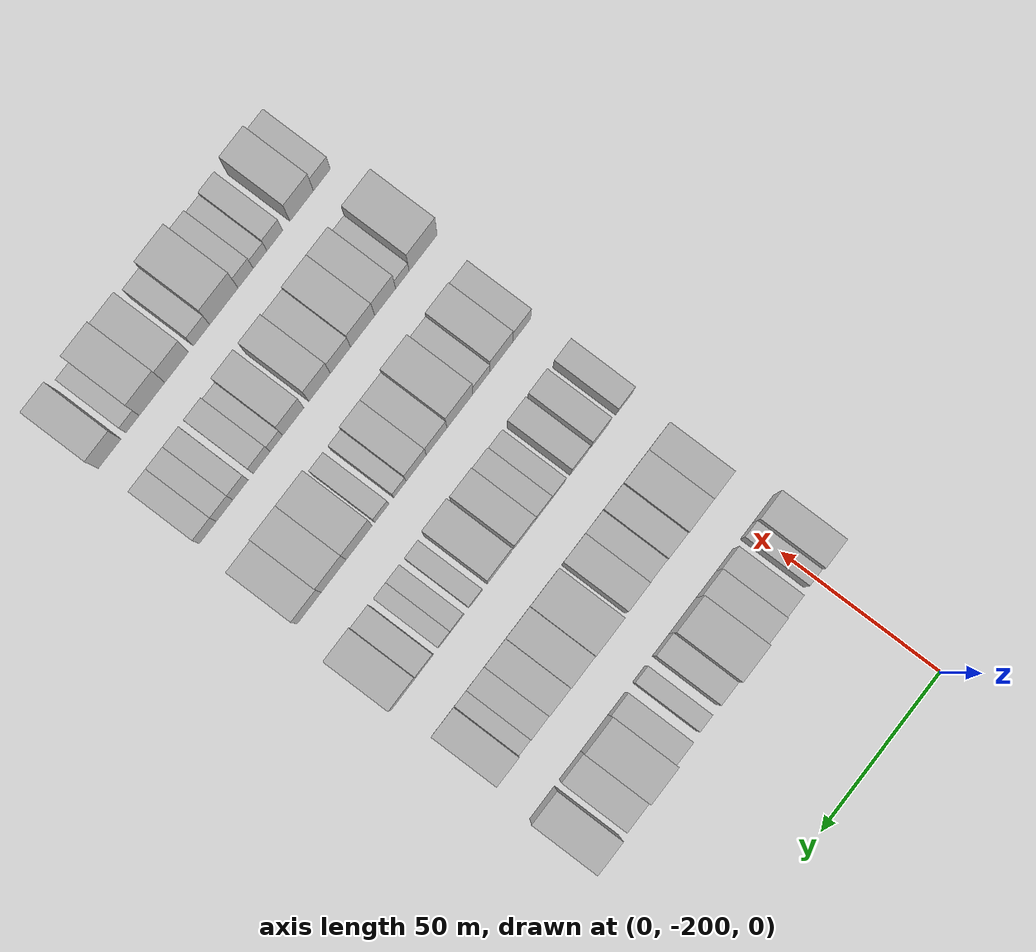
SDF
<sdf version="1.6">
 <world name="default">
  <model name="building_38">
   <static>1</static>
   <pose>50.0000 -205.9737 0 0.000000 0.000000 0.000000</pose>
   <link name="link">
    <pose>0 0 9.00 0 0 0</pose>
    <collision name="collision"><geometry><box><size>20.0000 8.9506 18.0000</size></box></geometry></collision>
    <visual name="visual">
     <cast_shadows>0</cast_shadows>
     <geometry><box><size>20.0000 8.9506 18.0000</size></box></geometry>
     <material>
      <script>
       <uri>model://HANNAS_wall/materials/scripts</uri>
       <uri>model://HANNAS_wall/materials/textures</uri>
       <name>vrc/HANNAS_wall</name>
      </script>
     </material>
    </visual>
   </link>
  </model>
  <model name="building_39">
   <static>1</static>
   <pose>50.0000 -198.9181 0 0.000000 0.000000 0.000000</pose>
   <link name="link">
    <pose>0 0 6.00 0 0 0</pose>
    <collision name="collision"><geometry><box><size>20.0000 5.1606 12.0000</size></box></geometry></collision>
    <visual name="visual">
     <cast_shadows>0</cast_shadows>
     <geometry><box><size>20.0000 5.1606 12.0000</size></box></geometry>
     <material>
      <script>
       <uri>model://HANNAS_wall/materials/scripts</uri>
       <uri>model://HANNAS_wall/materials/textures</uri>
       <name>vrc/HANNAS_wall</name>
      </script>
     </material>
    </visual>
   </link>
  </model>
  <model name="building_40">
   <static>1</static>
   <pose>50.0000 -189.7828 0 0.000000 0.000000 0.000000</pose>
   <link name="link">
    <pose>0 0 7.50 0 0 0</pose>
    <collision name="collision"><geometry><box><size>20.0000 7.1099 15.0000</size></box></geometry></collision>
    <visual name="visual">
     <cast_shadows>0</cast_shadows>
     <geometry><box><size>20.0000 7.1099 15.0000</size></box></geometry>
     <material>
      <script>
       <uri>model://HANNAS_wall/materials/scripts</uri>
       <uri>model://HANNAS_wall/materials/textures</uri>
       <name>vrc/HANNAS_wall</name>
      </script>
     </material>
    </visual>
   </link>
  </model>
  <model name="building_41">
   <static>1</static>
   <pose>50.0000 -182.0409 0 0.000000 0.000000 0.000000</pose>
   <link name="link">
    <pose>0 0 9.00 0 0 0</pose>
    <collision name="collision"><geometry><box><size>20.0000 8.3740 18.0000</size></box></geometry></collision>
    <visual name="visual">
     <cast_shadows>0</cast_shadows>
     <geometry><box><size>20.0000 8.3740 18.0000</size></box></geometry>
     <material>
      <script>
       <uri>model://HANNAS_wall/materials/scripts</uri>
       <uri>model://HANNAS_wall/materials/textures</uri>
       <name>vrc/HANNAS_wall</name>
      </script>
     </material>
    </visual>
   </link>
  </model>
  <model name="building_42">
   <static>1</static>
   <pose>50.0000 -172.1996 0 0.000000 0.000000 0.000000</pose>
   <link name="link">
    <pose>0 0 12.00 0 0 0</pose>
    <collision name="collision"><geometry><box><size>20.0000 11.3087 24.0000</size></box></geometry></collision>
    <visual name="visual">
     <cast_shadows>0</cast_shadows>
     <geometry><box><size>20.0000 11.3087 24.0000</size></box></geometry>
     <material>
      <script>
       <uri>model://HANNAS_wall/materials/scripts</uri>
       <uri>model://HANNAS_wall/materials/textures</uri>
       <name>vrc/HANNAS_wall</name>
      </script>
     </material>
    </visual>
   </link>
  </model>
  <model name="building_43">
   <static>1</static>
   <pose>50.0000 -162.9634 0 0.000000 0.000000 0.000000</pose>
   <link name="link">
    <pose>0 0 7.50 0 0 0</pose>
    <collision name="collision"><geometry><box><size>20.0000 7.1636 15.0000</size></box></geometry></collision>
    <visual name="visual">
     <cast_shadows>0</cast_shadows>
     <geometry><box><size>20.0000 7.1636 15.0000</size></box></geometry>
     <material>
      <script>
       <uri>model://HANNAS_wall/materials/scripts</uri>
       <uri>model://HANNAS_wall/materials/textures</uri>
       <name>vrc/HANNAS_wall</name>
      </script>
     </material>
    </visual>
   </link>
  </model>
  <model name="building_44">
   <static>1</static>
   <pose>50.0000 -153.7354 0 0.000000 0.000000 0.000000</pose>
   <link name="link">
    <pose>0 0 6.00 0 0 0</pose>
    <collision name="collision"><geometry><box><size>20.0000 5.2925 12.0000</size></box></geometry></collision>
    <visual name="visual">
     <cast_shadows>0</cast_shadows>
     <geometry><box><size>20.0000 5.2925 12.0000</size></box></geometry>
     <material>
      <script>
       <uri>model://HANNAS_wall/materials/scripts</uri>
       <uri>model://HANNAS_wall/materials/textures</uri>
       <name>vrc/HANNAS_wall</name>
      </script>
     </material>
    </visual>
   </link>
  </model>
  <model name="building_45">
   <static>1</static>
   <pose>50.0000 -144.5357 0 0.000000 0.000000 0.000000</pose>
   <link name="link">
    <pose>0 0 7.50 0 0 0</pose>
    <collision name="collision"><geometry><box><size>20.0000 7.1068 15.0000</size></box></geometry></collision>
    <visual name="visual">
     <cast_shadows>0</cast_shadows>
     <geometry><box><size>20.0000 7.1068 15.0000</size></box></geometry>
     <material>
      <script>
       <uri>model://HANNAS_wall/materials/scripts</uri>
       <uri>model://HANNAS_wall/materials/textures</uri>
       <name>vrc/HANNAS_wall</name>
      </script>
     </material>
    </visual>
   </link>
  </model>
  <model name="building_46">
   <static>1</static>
   <pose>50.0000 -135.3073 0 0.000000 0.000000 0.000000</pose>
   <link name="link">
    <pose>0 0 12.00 0 0 0</pose>
    <collision name="collision"><geometry><box><size>20.0000 11.3501 24.0000</size></box></geometry></collision>
    <visual name="visual">
     <cast_shadows>0</cast_shadows>
     <geometry><box><size>20.0000 11.3501 24.0000</size></box></geometry>
     <material>
      <script>
       <uri>model://HANNAS_wall/materials/scripts</uri>
       <uri>model://HANNAS_wall/materials/textures</uri>
       <name>vrc/HANNAS_wall</name>
      </script>
     </material>
    </visual>
   </link>
  </model>
  <model name="building_47">
   <static>1</static>
   <pose>50.0000 -125.1540 0 0.000000 0.000000 0.000000</pose>
   <link name="link">
    <pose>0 0 9.00 0 0 0</pose>
    <collision name="collision"><geometry><box><size>20.0000 8.9565 18.0000</size></box></geometry></collision>
    <visual name="visual">
     <cast_shadows>0</cast_shadows>
     <geometry><box><size>20.0000 8.9565 18.0000</size></box></geometry>
     <material>
      <script>
       <uri>model://HANNAS_wall/materials/scripts</uri>
       <uri>model://HANNAS_wall/materials/textures</uri>
       <name>vrc/HANNAS_wall</name>
      </script>
     </material>
    </visual>
   </link>
  </model>
  <model name="building_48">
   <static>1</static>
   <pose>50.0000 -113.5470 0 0.000000 0.000000 0.000000</pose>
   <link name="link">
    <pose>0 0 12.00 0 0 0</pose>
    <collision name="collision"><geometry><box><size>20.0000 10.2575 24.0000</size></box></geometry></collision>
    <visual name="visual">
     <cast_shadows>0</cast_shadows>
     <geometry><box><size>20.0000 10.2575 24.0000</size></box></geometry>
     <material>
      <script>
       <uri>model://HANNAS_wall/materials/scripts</uri>
       <uri>model://HANNAS_wall/materials/textures</uri>
       <name>vrc/HANNAS_wall</name>
      </script>
     </material>
    </visual>
   </link>
  </model>
  <model name="building_157">
   <static>1</static>
   <pose>82.0000 -202.5680 0 0.000000 0.000000 0.000000</pose>
   <link name="link">
    <pose>0 0 10.50 0 0 0</pose>
    <collision name="collision"><geometry><box><size>20.0000 8.5400 21.0000</size></box></geometry></collision>
    <visual name="visual">
     <cast_shadows>0</cast_shadows>
     <geometry><box><size>20.0000 8.5400 21.0000</size></box></geometry>
     <material>
      <script>
       <uri>model://HANNAS_wall/materials/scripts</uri>
       <uri>model://HANNAS_wall/materials/textures</uri>
       <name>vrc/HANNAS_wall</name>
      </script>
     </material>
    </visual>
   </link>
  </model>
  <model name="building_158">
   <static>1</static>
   <pose>82.0000 -193.2021 0 0.000000 0.000000 0.000000</pose>
   <link name="link">
    <pose>0 0 10.50 0 0 0</pose>
    <collision name="collision"><geometry><box><size>20.0000 10.1916 21.0000</size></box></geometry></collision>
    <visual name="visual">
     <cast_shadows>0</cast_shadows>
     <geometry><box><size>20.0000 10.1916 21.0000</size></box></geometry>
     <material>
      <script>
       <uri>model://HANNAS_wall/materials/scripts</uri>
       <uri>model://HANNAS_wall/materials/textures</uri>
       <name>vrc/HANNAS_wall</name>
      </script>
     </material>
    </visual>
   </link>
  </model>
  <model name="building_159">
   <static>1</static>
   <pose>82.0000 -184.1358 0 0.000000 0.000000 0.000000</pose>
   <link name="link">
    <pose>0 0 9.00 0 0 0</pose>
    <collision name="collision"><geometry><box><size>20.0000 7.9411 18.0000</size></box></geometry></collision>
    <visual name="visual">
     <cast_shadows>0</cast_shadows>
     <geometry><box><size>20.0000 7.9411 18.0000</size></box></geometry>
     <material>
      <script>
       <uri>model://HANNAS_wall/materials/scripts</uri>
       <uri>model://HANNAS_wall/materials/textures</uri>
       <name>vrc/HANNAS_wall</name>
      </script>
     </material>
    </visual>
   </link>
  </model>
  <model name="building_160">
   <static>1</static>
   <pose>82.0000 -176.4742 0 0.000000 0.000000 0.000000</pose>
   <link name="link">
    <pose>0 0 7.50 0 0 0</pose>
    <collision name="collision"><geometry><box><size>20.0000 7.3819 15.0000</size></box></geometry></collision>
    <visual name="visual">
     <cast_shadows>0</cast_shadows>
     <geometry><box><size>20.0000 7.3819 15.0000</size></box></geometry>
     <material>
      <script>
       <uri>model://HANNAS_wall/materials/scripts</uri>
       <uri>model://HANNAS_wall/materials/textures</uri>
       <name>vrc/HANNAS_wall</name>
      </script>
     </material>
    </visual>
   </link>
  </model>
  <model name="building_161">
   <static>1</static>
   <pose>82.0000 -168.3048 0 0.000000 0.000000 0.000000</pose>
   <link name="link">
    <pose>0 0 9.00 0 0 0</pose>
    <collision name="collision"><geometry><box><size>20.0000 8.9570 18.0000</size></box></geometry></collision>
    <visual name="visual">
     <cast_shadows>0</cast_shadows>
     <geometry><box><size>20.0000 8.9570 18.0000</size></box></geometry>
     <material>
      <script>
       <uri>model://HANNAS_wall/materials/scripts</uri>
       <uri>model://HANNAS_wall/materials/textures</uri>
       <name>vrc/HANNAS_wall</name>
      </script>
     </material>
    </visual>
   </link>
  </model>
  <model name="building_162">
   <static>1</static>
   <pose>82.0000 -155.9748 0 0.000000 0.000000 0.000000</pose>
   <link name="link">
    <pose>0 0 12.00 0 0 0</pose>
    <collision name="collision"><geometry><box><size>20.0000 11.7029 24.0000</size></box></geometry></collision>
    <visual name="visual">
     <cast_shadows>0</cast_shadows>
     <geometry><box><size>20.0000 11.7029 24.0000</size></box></geometry>
     <material>
      <script>
       <uri>model://HANNAS_wall/materials/scripts</uri>
       <uri>model://HANNAS_wall/materials/textures</uri>
       <name>vrc/HANNAS_wall</name>
      </script>
     </material>
    </visual>
   </link>
  </model>
  <model name="building_163">
   <static>1</static>
   <pose>82.0000 -145.2569 0 0.000000 0.000000 0.000000</pose>
   <link name="link">
    <pose>0 0 10.50 0 0 0</pose>
    <collision name="collision"><geometry><box><size>20.0000 9.7329 21.0000</size></box></geometry></collision>
    <visual name="visual">
     <cast_shadows>0</cast_shadows>
     <geometry><box><size>20.0000 9.7329 21.0000</size></box></geometry>
     <material>
      <script>
       <uri>model://HANNAS_wall/materials/scripts</uri>
       <uri>model://HANNAS_wall/materials/textures</uri>
       <name>vrc/HANNAS_wall</name>
      </script>
     </material>
    </visual>
   </link>
  </model>
  <model name="building_164">
   <static>1</static>
   <pose>82.0000 -136.0621 0 0.000000 0.000000 0.000000</pose>
   <link name="link">
    <pose>0 0 9.00 0 0 0</pose>
    <collision name="collision"><geometry><box><size>20.0000 8.6568 18.0000</size></box></geometry></collision>
    <visual name="visual">
     <cast_shadows>0</cast_shadows>
     <geometry><box><size>20.0000 8.6568 18.0000</size></box></geometry>
     <material>
      <script>
       <uri>model://HANNAS_wall/materials/scripts</uri>
       <uri>model://HANNAS_wall/materials/textures</uri>
       <name>vrc/HANNAS_wall</name>
      </script>
     </material>
    </visual>
   </link>
  </model>
  <model name="building_165">
   <static>1</static>
   <pose>82.0000 -128.0895 0 0.000000 0.000000 0.000000</pose>
   <link name="link">
    <pose>0 0 7.50 0 0 0</pose>
    <collision name="collision"><geometry><box><size>20.0000 7.2883 15.0000</size></box></geometry></collision>
    <visual name="visual">
     <cast_shadows>0</cast_shadows>
     <geometry><box><size>20.0000 7.2883 15.0000</size></box></geometry>
     <material>
      <script>
       <uri>model://HANNAS_wall/materials/scripts</uri>
       <uri>model://HANNAS_wall/materials/textures</uri>
       <name>vrc/HANNAS_wall</name>
      </script>
     </material>
    </visual>
   </link>
  </model>
  <model name="building_166">
   <static>1</static>
   <pose>82.0000 -121.9640 0 0.000000 0.000000 0.000000</pose>
   <link name="link">
    <pose>0 0 6.00 0 0 0</pose>
    <collision name="collision"><geometry><box><size>20.0000 4.9628 12.0000</size></box></geometry></collision>
    <visual name="visual">
     <cast_shadows>0</cast_shadows>
     <geometry><box><size>20.0000 4.9628 12.0000</size></box></geometry>
     <material>
      <script>
       <uri>model://HANNAS_wall/materials/scripts</uri>
       <uri>model://HANNAS_wall/materials/textures</uri>
       <name>vrc/HANNAS_wall</name>
      </script>
     </material>
    </visual>
   </link>
  </model>
  <model name="building_167">
   <static>1</static>
   <pose>82.0000 -114.9471 0 0.000000 0.000000 0.000000</pose>
   <link name="link">
    <pose>0 0 10.50 0 0 0</pose>
    <collision name="collision"><geometry><box><size>20.0000 9.0710 21.0000</size></box></geometry></collision>
    <visual name="visual">
     <cast_shadows>0</cast_shadows>
     <geometry><box><size>20.0000 9.0710 21.0000</size></box></geometry>
     <material>
      <script>
       <uri>model://HANNAS_wall/materials/scripts</uri>
       <uri>model://HANNAS_wall/materials/textures</uri>
       <name>vrc/HANNAS_wall</name>
      </script>
     </material>
    </visual>
   </link>
  </model>
  <model name="building_271">
   <static>1</static>
   <pose>114.0000 -205.9160 0 0.000000 0.000000 0.000000</pose>
   <link name="link">
    <pose>0 0 7.50 0 0 0</pose>
    <collision name="collision"><geometry><box><size>20.0000 6.9326 15.0000</size></box></geometry></collision>
    <visual name="visual">
     <cast_shadows>0</cast_shadows>
     <geometry><box><size>20.0000 6.9326 15.0000</size></box></geometry>
     <material>
      <script>
       <uri>model://HANNAS_wall/materials/scripts</uri>
       <uri>model://HANNAS_wall/materials/textures</uri>
       <name>vrc/HANNAS_wall</name>
      </script>
     </material>
    </visual>
   </link>
  </model>
  <model name="building_272">
   <static>1</static>
   <pose>114.0000 -195.5907 0 0.000000 0.000000 0.000000</pose>
   <link name="link">
    <pose>0 0 9.00 0 0 0</pose>
    <collision name="collision"><geometry><box><size>20.0000 7.7179 18.0000</size></box></geometry></collision>
    <visual name="visual">
     <cast_shadows>0</cast_shadows>
     <geometry><box><size>20.0000 7.7179 18.0000</size></box></geometry>
     <material>
      <script>
       <uri>model://HANNAS_wall/materials/scripts</uri>
       <uri>model://HANNAS_wall/materials/textures</uri>
       <name>vrc/HANNAS_wall</name>
      </script>
     </material>
    </visual>
   </link>
  </model>
  <model name="building_273">
   <static>1</static>
   <pose>114.0000 -186.9895 0 0.000000 0.000000 0.000000</pose>
   <link name="link">
    <pose>0 0 9.00 0 0 0</pose>
    <collision name="collision"><geometry><box><size>20.0000 7.4845 18.0000</size></box></geometry></collision>
    <visual name="visual">
     <cast_shadows>0</cast_shadows>
     <geometry><box><size>20.0000 7.4845 18.0000</size></box></geometry>
     <material>
      <script>
       <uri>model://HANNAS_wall/materials/scripts</uri>
       <uri>model://HANNAS_wall/materials/textures</uri>
       <name>vrc/HANNAS_wall</name>
      </script>
     </material>
    </visual>
   </link>
  </model>
  <model name="building_274">
   <static>1</static>
   <pose>114.0000 -178.2730 0 0.000000 0.000000 0.000000</pose>
   <link name="link">
    <pose>0 0 6.00 0 0 0</pose>
    <collision name="collision"><geometry><box><size>20.0000 5.9485 12.0000</size></box></geometry></collision>
    <visual name="visual">
     <cast_shadows>0</cast_shadows>
     <geometry><box><size>20.0000 5.9485 12.0000</size></box></geometry>
     <material>
      <script>
       <uri>model://HANNAS_wall/materials/scripts</uri>
       <uri>model://HANNAS_wall/materials/textures</uri>
       <name>vrc/HANNAS_wall</name>
      </script>
     </material>
    </visual>
   </link>
  </model>
  <model name="building_275">
   <static>1</static>
   <pose>114.0000 -171.9778 0 0.000000 0.000000 0.000000</pose>
   <link name="link">
    <pose>0 0 7.50 0 0 0</pose>
    <collision name="collision"><geometry><box><size>20.0000 6.6419 15.0000</size></box></geometry></collision>
    <visual name="visual">
     <cast_shadows>0</cast_shadows>
     <geometry><box><size>20.0000 6.6419 15.0000</size></box></geometry>
     <material>
      <script>
       <uri>model://HANNAS_wall/materials/scripts</uri>
       <uri>model://HANNAS_wall/materials/textures</uri>
       <name>vrc/HANNAS_wall</name>
      </script>
     </material>
    </visual>
   </link>
  </model>
  <model name="building_276">
   <static>1</static>
   <pose>114.0000 -164.1762 0 0.000000 0.000000 0.000000</pose>
   <link name="link">
    <pose>0 0 9.00 0 0 0</pose>
    <collision name="collision"><geometry><box><size>20.0000 8.9612 18.0000</size></box></geometry></collision>
    <visual name="visual">
     <cast_shadows>0</cast_shadows>
     <geometry><box><size>20.0000 8.9612 18.0000</size></box></geometry>
     <material>
      <script>
       <uri>model://HANNAS_wall/materials/scripts</uri>
       <uri>model://HANNAS_wall/materials/textures</uri>
       <name>vrc/HANNAS_wall</name>
      </script>
     </material>
    </visual>
   </link>
  </model>
  <model name="building_277">
   <static>1</static>
   <pose>114.0000 -153.6867 0 0.000000 0.000000 0.000000</pose>
   <link name="link">
    <pose>0 0 12.00 0 0 0</pose>
    <collision name="collision"><geometry><box><size>20.0000 10.0178 24.0000</size></box></geometry></collision>
    <visual name="visual">
     <cast_shadows>0</cast_shadows>
     <geometry><box><size>20.0000 10.0178 24.0000</size></box></geometry>
     <material>
      <script>
       <uri>model://HANNAS_wall/materials/scripts</uri>
       <uri>model://HANNAS_wall/materials/textures</uri>
       <name>vrc/HANNAS_wall</name>
      </script>
     </material>
    </visual>
   </link>
  </model>
  <model name="building_278">
   <static>1</static>
   <pose>114.0000 -143.8730 0 0.000000 0.000000 0.000000</pose>
   <link name="link">
    <pose>0 0 6.00 0 0 0</pose>
    <collision name="collision"><geometry><box><size>20.0000 5.6096 12.0000</size></box></geometry></collision>
    <visual name="visual">
     <cast_shadows>0</cast_shadows>
     <geometry><box><size>20.0000 5.6096 12.0000</size></box></geometry>
     <material>
      <script>
       <uri>model://HANNAS_wall/materials/scripts</uri>
       <uri>model://HANNAS_wall/materials/textures</uri>
       <name>vrc/HANNAS_wall</name>
      </script>
     </material>
    </visual>
   </link>
  </model>
  <model name="building_279">
   <static>1</static>
   <pose>114.0000 -136.2894 0 0.000000 0.000000 0.000000</pose>
   <link name="link">
    <pose>0 0 6.00 0 0 0</pose>
    <collision name="collision"><geometry><box><size>20.0000 5.5576 12.0000</size></box></geometry></collision>
    <visual name="visual">
     <cast_shadows>0</cast_shadows>
     <geometry><box><size>20.0000 5.5576 12.0000</size></box></geometry>
     <material>
      <script>
       <uri>model://HANNAS_wall/materials/scripts</uri>
       <uri>model://HANNAS_wall/materials/textures</uri>
       <name>vrc/HANNAS_wall</name>
      </script>
     </material>
    </visual>
   </link>
  </model>
  <model name="building_280">
   <static>1</static>
   <pose>114.0000 -131.0046 0 0.000000 0.000000 0.000000</pose>
   <link name="link">
    <pose>0 0 6.00 0 0 0</pose>
    <collision name="collision"><geometry><box><size>20.0000 5.0121 12.0000</size></box></geometry></collision>
    <visual name="visual">
     <cast_shadows>0</cast_shadows>
     <geometry><box><size>20.0000 5.0121 12.0000</size></box></geometry>
     <material>
      <script>
       <uri>model://HANNAS_wall/materials/scripts</uri>
       <uri>model://HANNAS_wall/materials/textures</uri>
       <name>vrc/HANNAS_wall</name>
      </script>
     </material>
    </visual>
   </link>
  </model>
  <model name="building_281">
   <static>1</static>
   <pose>114.0000 -122.9035 0 0.000000 0.000000 0.000000</pose>
   <link name="link">
    <pose>0 0 7.50 0 0 0</pose>
    <collision name="collision"><geometry><box><size>20.0000 7.1901 15.0000</size></box></geometry></collision>
    <visual name="visual">
     <cast_shadows>0</cast_shadows>
     <geometry><box><size>20.0000 7.1901 15.0000</size></box></geometry>
     <material>
      <script>
       <uri>model://HANNAS_wall/materials/scripts</uri>
       <uri>model://HANNAS_wall/materials/textures</uri>
       <name>vrc/HANNAS_wall</name>
      </script>
     </material>
    </visual>
   </link>
  </model>
  <model name="building_282">
   <static>1</static>
   <pose>114.0000 -114.1454 0 0.000000 0.000000 0.000000</pose>
   <link name="link">
    <pose>0 0 10.50 0 0 0</pose>
    <collision name="collision"><geometry><box><size>20.0000 10.3260 21.0000</size></box></geometry></collision>
    <visual name="visual">
     <cast_shadows>0</cast_shadows>
     <geometry><box><size>20.0000 10.3260 21.0000</size></box></geometry>
     <material>
      <script>
       <uri>model://HANNAS_wall/materials/scripts</uri>
       <uri>model://HANNAS_wall/materials/textures</uri>
       <name>vrc/HANNAS_wall</name>
      </script>
     </material>
    </visual>
   </link>
  </model>
  <model name="building_374">
   <static>1</static>
   <pose>146.0000 -205.1313 0 0.000000 0.000000 0.000000</pose>
   <link name="link">
    <pose>0 0 9.00 0 0 0</pose>
    <collision name="collision"><geometry><box><size>20.0000 7.5135 18.0000</size></box></geometry></collision>
    <visual name="visual">
     <cast_shadows>0</cast_shadows>
     <geometry><box><size>20.0000 7.5135 18.0000</size></box></geometry>
     <material>
      <script>
       <uri>model://HANNAS_wall/materials/scripts</uri>
       <uri>model://HANNAS_wall/materials/textures</uri>
       <name>vrc/HANNAS_wall</name>
      </script>
     </material>
    </visual>
   </link>
  </model>
  <model name="building_375">
   <static>1</static>
   <pose>146.0000 -196.6264 0 0.000000 0.000000 0.000000</pose>
   <link name="link">
    <pose>0 0 10.50 0 0 0</pose>
    <collision name="collision"><geometry><box><size>20.0000 9.4964 21.0000</size></box></geometry></collision>
    <visual name="visual">
     <cast_shadows>0</cast_shadows>
     <geometry><box><size>20.0000 9.4964 21.0000</size></box></geometry>
     <material>
      <script>
       <uri>model://HANNAS_wall/materials/scripts</uri>
       <uri>model://HANNAS_wall/materials/textures</uri>
       <name>vrc/HANNAS_wall</name>
      </script>
     </material>
    </visual>
   </link>
  </model>
  <model name="building_376">
   <static>1</static>
   <pose>146.0000 -188.2795 0 0.000000 0.000000 0.000000</pose>
   <link name="link">
    <pose>0 0 7.50 0 0 0</pose>
    <collision name="collision"><geometry><box><size>20.0000 7.1973 15.0000</size></box></geometry></collision>
    <visual name="visual">
     <cast_shadows>0</cast_shadows>
     <geometry><box><size>20.0000 7.1973 15.0000</size></box></geometry>
     <material>
      <script>
       <uri>model://HANNAS_wall/materials/scripts</uri>
       <uri>model://HANNAS_wall/materials/textures</uri>
       <name>vrc/HANNAS_wall</name>
      </script>
     </material>
    </visual>
   </link>
  </model>
  <model name="building_377">
   <static>1</static>
   <pose>146.0000 -179.2810 0 0.000000 0.000000 0.000000</pose>
   <link name="link">
    <pose>0 0 12.00 0 0 0</pose>
    <collision name="collision"><geometry><box><size>20.0000 10.7997 24.0000</size></box></geometry></collision>
    <visual name="visual">
     <cast_shadows>0</cast_shadows>
     <geometry><box><size>20.0000 10.7997 24.0000</size></box></geometry>
     <material>
      <script>
       <uri>model://HANNAS_wall/materials/scripts</uri>
       <uri>model://HANNAS_wall/materials/textures</uri>
       <name>vrc/HANNAS_wall</name>
      </script>
     </material>
    </visual>
   </link>
  </model>
  <model name="building_378">
   <static>1</static>
   <pose>146.0000 -169.6002 0 0.000000 0.000000 0.000000</pose>
   <link name="link">
    <pose>0 0 9.00 0 0 0</pose>
    <collision name="collision"><geometry><box><size>20.0000 8.5618 18.0000</size></box></geometry></collision>
    <visual name="visual">
     <cast_shadows>0</cast_shadows>
     <geometry><box><size>20.0000 8.5618 18.0000</size></box></geometry>
     <material>
      <script>
       <uri>model://HANNAS_wall/materials/scripts</uri>
       <uri>model://HANNAS_wall/materials/textures</uri>
       <name>vrc/HANNAS_wall</name>
      </script>
     </material>
    </visual>
   </link>
  </model>
  <model name="building_379">
   <static>1</static>
   <pose>146.0000 -161.1227 0 0.000000 0.000000 0.000000</pose>
   <link name="link">
    <pose>0 0 9.00 0 0 0</pose>
    <collision name="collision"><geometry><box><size>20.0000 8.3933 18.0000</size></box></geometry></collision>
    <visual name="visual">
     <cast_shadows>0</cast_shadows>
     <geometry><box><size>20.0000 8.3933 18.0000</size></box></geometry>
     <material>
      <script>
       <uri>model://HANNAS_wall/materials/scripts</uri>
       <uri>model://HANNAS_wall/materials/textures</uri>
       <name>vrc/HANNAS_wall</name>
      </script>
     </material>
    </visual>
   </link>
  </model>
  <model name="building_380">
   <static>1</static>
   <pose>146.0000 -154.3424 0 0.000000 0.000000 0.000000</pose>
   <link name="link">
    <pose>0 0 6.00 0 0 0</pose>
    <collision name="collision"><geometry><box><size>20.0000 5.1673 12.0000</size></box></geometry></collision>
    <visual name="visual">
     <cast_shadows>0</cast_shadows>
     <geometry><box><size>20.0000 5.1673 12.0000</size></box></geometry>
     <material>
      <script>
       <uri>model://HANNAS_wall/materials/scripts</uri>
       <uri>model://HANNAS_wall/materials/textures</uri>
       <name>vrc/HANNAS_wall</name>
      </script>
     </material>
    </visual>
   </link>
  </model>
  <model name="building_381">
   <static>1</static>
   <pose>146.0000 -146.8288 0 0.000000 0.000000 0.000000</pose>
   <link name="link">
    <pose>0 0 6.00 0 0 0</pose>
    <collision name="collision"><geometry><box><size>20.0000 5.8598 12.0000</size></box></geometry></collision>
    <visual name="visual">
     <cast_shadows>0</cast_shadows>
     <geometry><box><size>20.0000 5.8598 12.0000</size></box></geometry>
     <material>
      <script>
       <uri>model://HANNAS_wall/materials/scripts</uri>
       <uri>model://HANNAS_wall/materials/textures</uri>
       <name>vrc/HANNAS_wall</name>
      </script>
     </material>
    </visual>
   </link>
  </model>
  <model name="building_382">
   <static>1</static>
   <pose>146.0000 -137.4668 0 0.000000 0.000000 0.000000</pose>
   <link name="link">
    <pose>0 0 12.00 0 0 0</pose>
    <collision name="collision"><geometry><box><size>20.0000 10.8642 24.0000</size></box></geometry></collision>
    <visual name="visual">
     <cast_shadows>0</cast_shadows>
     <geometry><box><size>20.0000 10.8642 24.0000</size></box></geometry>
     <material>
      <script>
       <uri>model://HANNAS_wall/materials/scripts</uri>
       <uri>model://HANNAS_wall/materials/textures</uri>
       <name>vrc/HANNAS_wall</name>
      </script>
     </material>
    </visual>
   </link>
  </model>
  <model name="building_383">
   <static>1</static>
   <pose>146.0000 -126.8823 0 0.000000 0.000000 0.000000</pose>
   <link name="link">
    <pose>0 0 12.00 0 0 0</pose>
    <collision name="collision"><geometry><box><size>20.0000 10.3047 24.0000</size></box></geometry></collision>
    <visual name="visual">
     <cast_shadows>0</cast_shadows>
     <geometry><box><size>20.0000 10.3047 24.0000</size></box></geometry>
     <material>
      <script>
       <uri>model://HANNAS_wall/materials/scripts</uri>
       <uri>model://HANNAS_wall/materials/textures</uri>
       <name>vrc/HANNAS_wall</name>
      </script>
     </material>
    </visual>
   </link>
  </model>
  <model name="building_384">
   <static>1</static>
   <pose>146.0000 -116.7826 0 0.000000 0.000000 0.000000</pose>
   <link name="link">
    <pose>0 0 10.50 0 0 0</pose>
    <collision name="collision"><geometry><box><size>20.0000 9.8947 21.0000</size></box></geometry></collision>
    <visual name="visual">
     <cast_shadows>0</cast_shadows>
     <geometry><box><size>20.0000 9.8947 21.0000</size></box></geometry>
     <material>
      <script>
       <uri>model://HANNAS_wall/materials/scripts</uri>
       <uri>model://HANNAS_wall/materials/textures</uri>
       <name>vrc/HANNAS_wall</name>
      </script>
     </material>
    </visual>
   </link>
  </model>
  <model name="building_490">
   <static>1</static>
   <pose>178.0000 -205.8962 0 0.000000 0.000000 0.000000</pose>
   <link name="link">
    <pose>0 0 12.00 0 0 0</pose>
    <collision name="collision"><geometry><box><size>20.0000 11.6328 24.0000</size></box></geometry></collision>
    <visual name="visual">
     <cast_shadows>0</cast_shadows>
     <geometry><box><size>20.0000 11.6328 24.0000</size></box></geometry>
     <material>
      <script>
       <uri>model://HANNAS_wall/materials/scripts</uri>
       <uri>model://HANNAS_wall/materials/textures</uri>
       <name>vrc/HANNAS_wall</name>
      </script>
     </material>
    </visual>
   </link>
  </model>
  <model name="building_491">
   <static>1</static>
   <pose>178.0000 -197.2244 0 0.000000 0.000000 0.000000</pose>
   <link name="link">
    <pose>0 0 6.00 0 0 0</pose>
    <collision name="collision"><geometry><box><size>20.0000 5.7109 12.0000</size></box></geometry></collision>
    <visual name="visual">
     <cast_shadows>0</cast_shadows>
     <geometry><box><size>20.0000 5.7109 12.0000</size></box></geometry>
     <material>
      <script>
       <uri>model://HANNAS_wall/materials/scripts</uri>
       <uri>model://HANNAS_wall/materials/textures</uri>
       <name>vrc/HANNAS_wall</name>
      </script>
     </material>
    </visual>
   </link>
  </model>
  <model name="building_492">
   <static>1</static>
   <pose>178.0000 -190.0054 0 0.000000 0.000000 0.000000</pose>
   <link name="link">
    <pose>0 0 10.50 0 0 0</pose>
    <collision name="collision"><geometry><box><size>20.0000 8.7271 21.0000</size></box></geometry></collision>
    <visual name="visual">
     <cast_shadows>0</cast_shadows>
     <geometry><box><size>20.0000 8.7271 21.0000</size></box></geometry>
     <material>
      <script>
       <uri>model://HANNAS_wall/materials/scripts</uri>
       <uri>model://HANNAS_wall/materials/textures</uri>
       <name>vrc/HANNAS_wall</name>
      </script>
     </material>
    </visual>
   </link>
  </model>
  <model name="building_493">
   <static>1</static>
   <pose>178.0000 -180.6107 0 0.000000 0.000000 0.000000</pose>
   <link name="link">
    <pose>0 0 10.50 0 0 0</pose>
    <collision name="collision"><geometry><box><size>20.0000 10.0622 21.0000</size></box></geometry></collision>
    <visual name="visual">
     <cast_shadows>0</cast_shadows>
     <geometry><box><size>20.0000 10.0622 21.0000</size></box></geometry>
     <material>
      <script>
       <uri>model://HANNAS_wall/materials/scripts</uri>
       <uri>model://HANNAS_wall/materials/textures</uri>
       <name>vrc/HANNAS_wall</name>
      </script>
     </material>
    </visual>
   </link>
  </model>
  <model name="building_494">
   <static>1</static>
   <pose>178.0000 -171.3494 0 0.000000 0.000000 0.000000</pose>
   <link name="link">
    <pose>0 0 9.00 0 0 0</pose>
    <collision name="collision"><geometry><box><size>20.0000 8.4605 18.0000</size></box></geometry></collision>
    <visual name="visual">
     <cast_shadows>0</cast_shadows>
     <geometry><box><size>20.0000 8.4605 18.0000</size></box></geometry>
     <material>
      <script>
       <uri>model://HANNAS_wall/materials/scripts</uri>
       <uri>model://HANNAS_wall/materials/textures</uri>
       <name>vrc/HANNAS_wall</name>
      </script>
     </material>
    </visual>
   </link>
  </model>
  <model name="building_495">
   <static>1</static>
   <pose>178.0000 -162.6447 0 0.000000 0.000000 0.000000</pose>
   <link name="link">
    <pose>0 0 10.50 0 0 0</pose>
    <collision name="collision"><geometry><box><size>20.0000 8.9489 21.0000</size></box></geometry></collision>
    <visual name="visual">
     <cast_shadows>0</cast_shadows>
     <geometry><box><size>20.0000 8.9489 21.0000</size></box></geometry>
     <material>
      <script>
       <uri>model://HANNAS_wall/materials/scripts</uri>
       <uri>model://HANNAS_wall/materials/textures</uri>
       <name>vrc/HANNAS_wall</name>
      </script>
     </material>
    </visual>
   </link>
  </model>
  <model name="building_496">
   <static>1</static>
   <pose>178.0000 -151.7306 0 0.000000 0.000000 0.000000</pose>
   <link name="link">
    <pose>0 0 10.50 0 0 0</pose>
    <collision name="collision"><geometry><box><size>20.0000 8.8793 21.0000</size></box></geometry></collision>
    <visual name="visual">
     <cast_shadows>0</cast_shadows>
     <geometry><box><size>20.0000 8.8793 21.0000</size></box></geometry>
     <material>
      <script>
       <uri>model://HANNAS_wall/materials/scripts</uri>
       <uri>model://HANNAS_wall/materials/textures</uri>
       <name>vrc/HANNAS_wall</name>
      </script>
     </material>
    </visual>
   </link>
  </model>
  <model name="building_497">
   <static>1</static>
   <pose>178.0000 -144.6940 0 0.000000 0.000000 0.000000</pose>
   <link name="link">
    <pose>0 0 6.00 0 0 0</pose>
    <collision name="collision"><geometry><box><size>20.0000 5.1939 12.0000</size></box></geometry></collision>
    <visual name="visual">
     <cast_shadows>0</cast_shadows>
     <geometry><box><size>20.0000 5.1939 12.0000</size></box></geometry>
     <material>
      <script>
       <uri>model://HANNAS_wall/materials/scripts</uri>
       <uri>model://HANNAS_wall/materials/textures</uri>
       <name>vrc/HANNAS_wall</name>
      </script>
     </material>
    </visual>
   </link>
  </model>
  <model name="building_498">
   <static>1</static>
   <pose>178.0000 -138.6037 0 0.000000 0.000000 0.000000</pose>
   <link name="link">
    <pose>0 0 7.50 0 0 0</pose>
    <collision name="collision"><geometry><box><size>20.0000 6.9867 15.0000</size></box></geometry></collision>
    <visual name="visual">
     <cast_shadows>0</cast_shadows>
     <geometry><box><size>20.0000 6.9867 15.0000</size></box></geometry>
     <material>
      <script>
       <uri>model://HANNAS_wall/materials/scripts</uri>
       <uri>model://HANNAS_wall/materials/textures</uri>
       <name>vrc/HANNAS_wall</name>
      </script>
     </material>
    </visual>
   </link>
  </model>
  <model name="building_499">
   <static>1</static>
   <pose>178.0000 -129.9241 0 0.000000 0.000000 0.000000</pose>
   <link name="link">
    <pose>0 0 7.50 0 0 0</pose>
    <collision name="collision"><geometry><box><size>20.0000 6.3726 15.0000</size></box></geometry></collision>
    <visual name="visual">
     <cast_shadows>0</cast_shadows>
     <geometry><box><size>20.0000 6.3726 15.0000</size></box></geometry>
     <material>
      <script>
       <uri>model://HANNAS_wall/materials/scripts</uri>
       <uri>model://HANNAS_wall/materials/textures</uri>
       <name>vrc/HANNAS_wall</name>
      </script>
     </material>
    </visual>
   </link>
  </model>
  <model name="building_500">
   <static>1</static>
   <pose>178.0000 -123.3153 0 0.000000 0.000000 0.000000</pose>
   <link name="link">
    <pose>0 0 7.50 0 0 0</pose>
    <collision name="collision"><geometry><box><size>20.0000 6.8449 15.0000</size></box></geometry></collision>
    <visual name="visual">
     <cast_shadows>0</cast_shadows>
     <geometry><box><size>20.0000 6.8449 15.0000</size></box></geometry>
     <material>
      <script>
       <uri>model://HANNAS_wall/materials/scripts</uri>
       <uri>model://HANNAS_wall/materials/textures</uri>
       <name>vrc/HANNAS_wall</name>
      </script>
     </material>
    </visual>
   </link>
  </model>
  <model name="building_501">
   <static>1</static>
   <pose>178.0000 -116.3751 0 0.000000 0.000000 0.000000</pose>
   <link name="link">
    <pose>0 0 7.50 0 0 0</pose>
    <collision name="collision"><geometry><box><size>20.0000 7.0355 15.0000</size></box></geometry></collision>
    <visual name="visual">
     <cast_shadows>0</cast_shadows>
     <geometry><box><size>20.0000 7.0355 15.0000</size></box></geometry>
     <material>
      <script>
       <uri>model://HANNAS_wall/materials/scripts</uri>
       <uri>model://HANNAS_wall/materials/textures</uri>
       <name>vrc/HANNAS_wall</name>
      </script>
     </material>
    </visual>
   </link>
  </model>
  <model name="building_608">
   <static>1</static>
   <pose>210.0000 -205.2289 0 0.000000 0.000000 0.000000</pose>
   <link name="link">
    <pose>0 0 7.50 0 0 0</pose>
    <collision name="collision"><geometry><box><size>20.0000 7.0562 15.0000</size></box></geometry></collision>
    <visual name="visual">
     <cast_shadows>0</cast_shadows>
     <geometry><box><size>20.0000 7.0562 15.0000</size></box></geometry>
     <material>
      <script>
       <uri>model://HANNAS_wall/materials/scripts</uri>
       <uri>model://HANNAS_wall/materials/textures</uri>
       <name>vrc/HANNAS_wall</name>
      </script>
     </material>
    </visual>
   </link>
  </model>
  <model name="building_609">
   <static>1</static>
   <pose>210.0000 -196.7787 0 0.000000 0.000000 0.000000</pose>
   <link name="link">
    <pose>0 0 10.50 0 0 0</pose>
    <collision name="collision"><geometry><box><size>20.0000 9.8442 21.0000</size></box></geometry></collision>
    <visual name="visual">
     <cast_shadows>0</cast_shadows>
     <geometry><box><size>20.0000 9.8442 21.0000</size></box></geometry>
     <material>
      <script>
       <uri>model://HANNAS_wall/materials/scripts</uri>
       <uri>model://HANNAS_wall/materials/textures</uri>
       <name>vrc/HANNAS_wall</name>
      </script>
     </material>
    </visual>
   </link>
  </model>
  <model name="building_610">
   <static>1</static>
   <pose>210.0000 -185.5665 0 0.000000 0.000000 0.000000</pose>
   <link name="link">
    <pose>0 0 7.50 0 0 0</pose>
    <collision name="collision"><geometry><box><size>20.0000 6.5803 15.0000</size></box></geometry></collision>
    <visual name="visual">
     <cast_shadows>0</cast_shadows>
     <geometry><box><size>20.0000 6.5803 15.0000</size></box></geometry>
     <material>
      <script>
       <uri>model://HANNAS_wall/materials/scripts</uri>
       <uri>model://HANNAS_wall/materials/textures</uri>
       <name>vrc/HANNAS_wall</name>
      </script>
     </material>
    </visual>
   </link>
  </model>
  <model name="building_611">
   <static>1</static>
   <pose>210.0000 -179.4464 0 0.000000 0.000000 0.000000</pose>
   <link name="link">
    <pose>0 0 6.00 0 0 0</pose>
    <collision name="collision"><geometry><box><size>20.0000 5.6599 12.0000</size></box></geometry></collision>
    <visual name="visual">
     <cast_shadows>0</cast_shadows>
     <geometry><box><size>20.0000 5.6599 12.0000</size></box></geometry>
     <material>
      <script>
       <uri>model://HANNAS_wall/materials/scripts</uri>
       <uri>model://HANNAS_wall/materials/textures</uri>
       <name>vrc/HANNAS_wall</name>
      </script>
     </material>
    </visual>
   </link>
  </model>
  <model name="building_612">
   <static>1</static>
   <pose>210.0000 -173.4340 0 0.000000 0.000000 0.000000</pose>
   <link name="link">
    <pose>0 0 7.50 0 0 0</pose>
    <collision name="collision"><geometry><box><size>20.0000 6.3648 15.0000</size></box></geometry></collision>
    <visual name="visual">
     <cast_shadows>0</cast_shadows>
     <geometry><box><size>20.0000 6.3648 15.0000</size></box></geometry>
     <material>
      <script>
       <uri>model://HANNAS_wall/materials/scripts</uri>
       <uri>model://HANNAS_wall/materials/textures</uri>
       <name>vrc/HANNAS_wall</name>
      </script>
     </material>
    </visual>
   </link>
  </model>
  <model name="building_613">
   <static>1</static>
   <pose>210.0000 -164.3910 0 0.000000 0.000000 0.000000</pose>
   <link name="link">
    <pose>0 0 12.00 0 0 0</pose>
    <collision name="collision"><geometry><box><size>20.0000 11.7212 24.0000</size></box></geometry></collision>
    <visual name="visual">
     <cast_shadows>0</cast_shadows>
     <geometry><box><size>20.0000 11.7212 24.0000</size></box></geometry>
     <material>
      <script>
       <uri>model://HANNAS_wall/materials/scripts</uri>
       <uri>model://HANNAS_wall/materials/textures</uri>
       <name>vrc/HANNAS_wall</name>
      </script>
     </material>
    </visual>
   </link>
  </model>
  <model name="building_614">
   <static>1</static>
   <pose>210.0000 -155.0964 0 0.000000 0.000000 0.000000</pose>
   <link name="link">
    <pose>0 0 7.50 0 0 0</pose>
    <collision name="collision"><geometry><box><size>20.0000 6.8681 15.0000</size></box></geometry></collision>
    <visual name="visual">
     <cast_shadows>0</cast_shadows>
     <geometry><box><size>20.0000 6.8681 15.0000</size></box></geometry>
     <material>
      <script>
       <uri>model://HANNAS_wall/materials/scripts</uri>
       <uri>model://HANNAS_wall/materials/textures</uri>
       <name>vrc/HANNAS_wall</name>
      </script>
     </material>
    </visual>
   </link>
  </model>
  <model name="building_615">
   <static>1</static>
   <pose>210.0000 -144.8017 0 0.000000 0.000000 0.000000</pose>
   <link name="link">
    <pose>0 0 10.50 0 0 0</pose>
    <collision name="collision"><geometry><box><size>20.0000 9.7213 21.0000</size></box></geometry></collision>
    <visual name="visual">
     <cast_shadows>0</cast_shadows>
     <geometry><box><size>20.0000 9.7213 21.0000</size></box></geometry>
     <material>
      <script>
       <uri>model://HANNAS_wall/materials/scripts</uri>
       <uri>model://HANNAS_wall/materials/textures</uri>
       <name>vrc/HANNAS_wall</name>
      </script>
     </material>
    </visual>
   </link>
  </model>
  <model name="building_616">
   <static>1</static>
   <pose>210.0000 -134.6372 0 0.000000 0.000000 0.000000</pose>
   <link name="link">
    <pose>0 0 12.00 0 0 0</pose>
    <collision name="collision"><geometry><box><size>20.0000 10.6078 24.0000</size></box></geometry></collision>
    <visual name="visual">
     <cast_shadows>0</cast_shadows>
     <geometry><box><size>20.0000 10.6078 24.0000</size></box></geometry>
     <material>
      <script>
       <uri>model://HANNAS_wall/materials/scripts</uri>
       <uri>model://HANNAS_wall/materials/textures</uri>
       <name>vrc/HANNAS_wall</name>
      </script>
     </material>
    </visual>
   </link>
  </model>
  <model name="building_617">
   <static>1</static>
   <pose>210.0000 -126.5776 0 0.000000 0.000000 0.000000</pose>
   <link name="link">
    <pose>0 0 6.00 0 0 0</pose>
    <collision name="collision"><geometry><box><size>20.0000 5.5114 12.0000</size></box></geometry></collision>
    <visual name="visual">
     <cast_shadows>0</cast_shadows>
     <geometry><box><size>20.0000 5.5114 12.0000</size></box></geometry>
     <material>
      <script>
       <uri>model://HANNAS_wall/materials/scripts</uri>
       <uri>model://HANNAS_wall/materials/textures</uri>
       <name>vrc/HANNAS_wall</name>
      </script>
     </material>
    </visual>
   </link>
  </model>
  <model name="building_618">
   <static>1</static>
   <pose>210.0000 -117.1122 0 0.000000 0.000000 0.000000</pose>
   <link name="link">
    <pose>0 0 10.50 0 0 0</pose>
    <collision name="collision"><geometry><box><size>20.0000 9.4196 21.0000</size></box></geometry></collision>
    <visual name="visual">
     <cast_shadows>0</cast_shadows>
     <geometry><box><size>20.0000 9.4196 21.0000</size></box></geometry>
     <material>
      <script>
       <uri>model://HANNAS_wall/materials/scripts</uri>
       <uri>model://HANNAS_wall/materials/textures</uri>
       <name>vrc/HANNAS_wall</name>
      </script>
     </material>
    </visual>
   </link>
  </model>
 </world>
</sdf>
